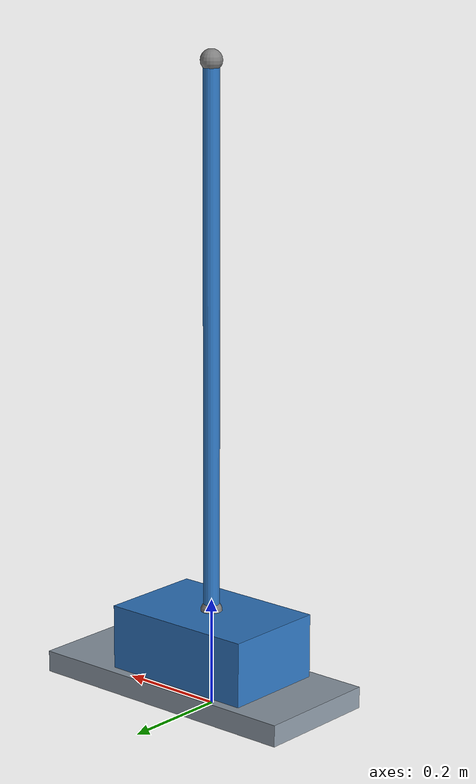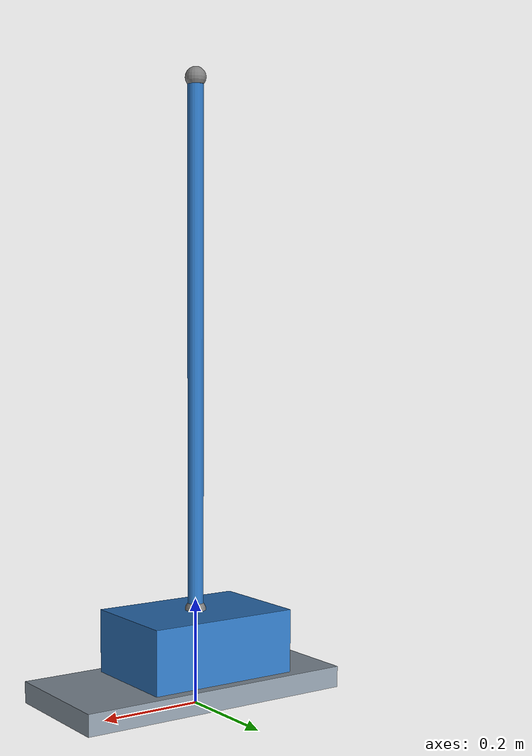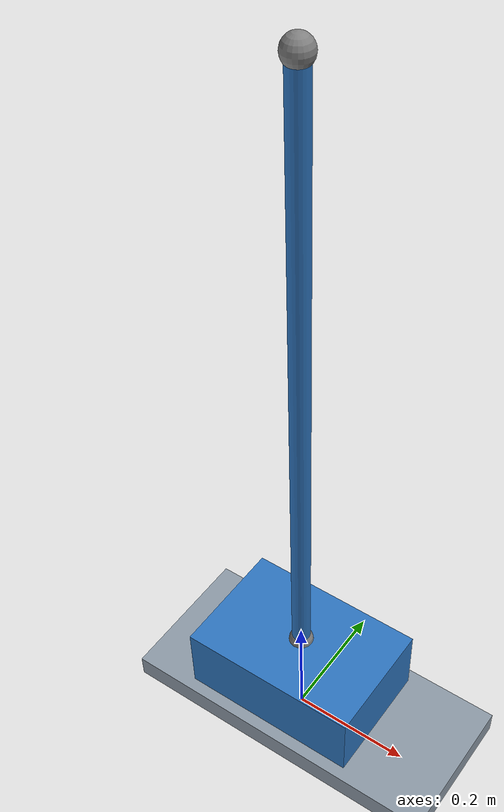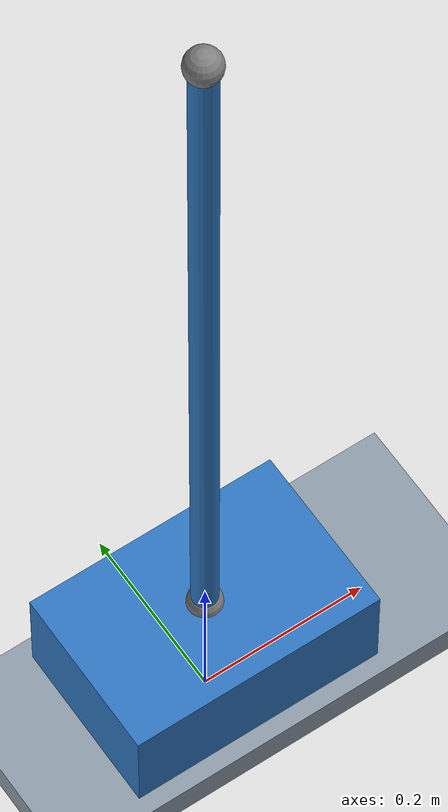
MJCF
<mujoco model="cartpole-control-observer-uniform-rod">
  <compiler angle="radian" inertiafromgeom="false"/>
  <option timestep="0.005" gravity="0 0 -9.8" integrator="Euler"/>
  <default><joint damping="0" armature="0" frictionloss="0"/><geom contype="0" conaffinity="0"/></default>
  <worldbody>
    <geom name="rail" type="box" pos="0 0 0.04" size="2.4 0.12 0.02" rgba="0.55 0.6 0.65 1"/>
    <body name="cart" pos="0 0 0.12">
      <joint name="cart_slide" type="slide" axis="1 0 0" limited="false"/>
      <inertial pos="0 0 0" mass="1" diaginertia="0.01 0.01 0.01"/>
      <geom name="cart_visual" type="box" size="0.15 0.1 0.06" rgba="0.18 0.46 0.75 1"/>
      <body name="pole" pos="0 0 0.06">
        <joint name="pole_hinge" type="hinge" axis="0 1 0" limited="false"/>
        <inertial pos="0 0 0.5" mass="0.1" diaginertia="0.008333333333333333 0.008333333333333333 0.00000001"/>
        <geom name="pole_visual" type="capsule" fromto="0 0 0 0 0 1" size="0.015" rgba="0.18 0.46 0.75 1"/>
        <site name="pivot" pos="0 0 0" size="0.02"/>
        <site name="pole_tip" pos="0 0 1" size="0.02"/>
      </body>
    </body>
  </worldbody>
  <!-- Force limits are explicit in the command/solver contract. Keeping this motor unclipped
       avoids accidentally differentiating a second hidden saturation in the nominal model. -->
  <actuator><motor name="cart_force" joint="cart_slide" gear="1" ctrllimited="false"/></actuator>
</mujoco>
